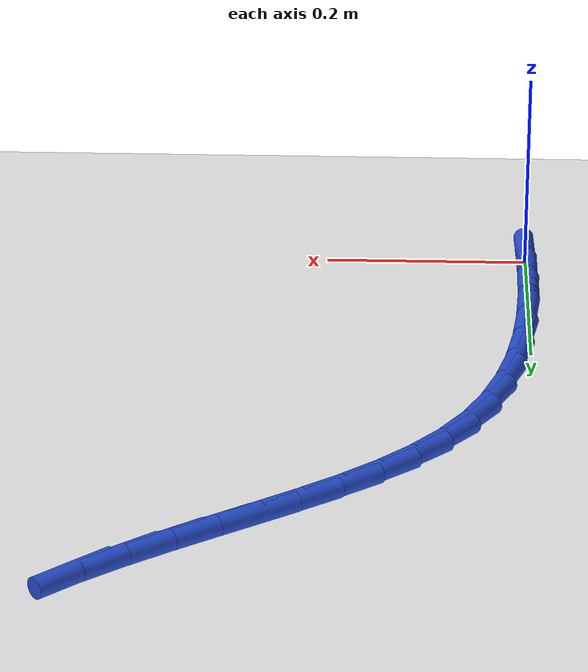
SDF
<sdf version="1.6">
 <world name="default">
  <model name="ground_plane">
   <static>1</static>
   <link name="link">
    <collision name="collision">
     <geometry><plane><normal>0 0 1</normal><size>100 100</size></plane></geometry>
     <surface><friction><ode><mu>100</mu><mu2>50</mu2></ode></friction></surface>
    </collision>
    <visual name="visual">
     <cast_shadows>0</cast_shadows>
     <geometry><plane><normal>0 0 1</normal><size>100 100</size></plane></geometry>
     <material>
      <script><uri>file://media/materials/scripts/gazebo.material</uri><name>Gazebo/WhiteGlow</name></script>
     </material>
    </visual>
   </link>
  </model>
  <model name="line">
   <link name="link_0">
    <pose>-3.903127820947816e-17 -1.3877787807814457e-17 0.01 0 1.57 -1.5505914478385485</pose>
    <collision name="collision">
     <geometry><cylinder><radius>0.01</radius><length>0.08</length></cylinder></geometry>
    </collision>
    <visual name="visual">
     <material>
      <script><name>Gazebo/Blue</name><uri>file://media/materials/scripts/gazebo.material</uri></script>
     </material>
     <geometry><cylinder><radius>0.01</radius><length>0.08</length></cylinder></geometry>
    </visual>
   </link>
   <link name="link_1">
    <pose>-0.000938762816465074 0.04645586192666425 0.01 0 1.57 1.5552604086132704</pose>
    <collision name="collision">
     <geometry><cylinder><radius>0.01</radius><length>0.08</length></cylinder></geometry>
    </collision>
    <visual name="visual">
     <material>
      <script><name>Gazebo/Blue</name><uri>file://media/materials/scripts/gazebo.material</uri></script>
     </material>
     <geometry><cylinder><radius>0.01</radius><length>0.08</length></cylinder></geometry>
    </visual>
   </link>
   <link name="link_2">
    <pose>-0.00021346502682845583 0.09313732783327625 0.01 0 1.57 1.5110777956562365</pose>
    <collision name="collision">
     <geometry><cylinder><radius>0.01</radius><length>0.08</length></cylinder></geometry>
    </collision>
    <visual name="visual">
     <material>
      <script><name>Gazebo/Blue</name><uri>file://media/materials/scripts/gazebo.material</uri></script>
     </material>
     <geometry><cylinder><radius>0.01</radius><length>0.08</length></cylinder></geometry>
    </visual>
   </link>
   <link name="link_3">
    <pose>0.0025612118360466107 0.13954465868091998 0.01 0 1.57 1.4571314653900533</pose>
    <collision name="collision">
     <geometry><cylinder><radius>0.01</radius><length>0.08</length></cylinder></geometry>
    </collision>
    <visual name="visual">
     <material>
      <script><name>Gazebo/Blue</name><uri>file://media/materials/scripts/gazebo.material</uri></script>
     </material>
     <geometry><cylinder><radius>0.01</radius><length>0.08</length></cylinder></geometry>
    </visual>
   </link>
   <link name="link_4">
    <pose>0.007770586239296926 0.18517811543067966 0.01 0 1.57 1.3917292936854357</pose>
    <collision name="collision">
     <geometry><cylinder><radius>0.01</radius><length>0.08</length></cylinder></geometry>
    </collision>
    <visual name="visual">
     <material>
      <script><name>Gazebo/Blue</name><uri>file://media/materials/scripts/gazebo.material</uri></script>
     </material>
     <geometry><cylinder><radius>0.01</radius><length>0.08</length></cylinder></geometry>
    </visual>
   </link>
   <link name="link_5">
    <pose>0.015799976650059284 0.2295379590436391 0.01 0 1.57 1.312863221745212</pose>
    <collision name="collision">
     <geometry><cylinder><radius>0.01</radius><length>0.08</length></cylinder></geometry>
    </collision>
    <visual name="visual">
     <material>
      <script><name>Gazebo/Blue</name><uri>file://media/materials/scripts/gazebo.material</uri></script>
     </material>
     <geometry><cylinder><radius>0.01</radius><length>0.08</length></cylinder></geometry>
    </visual>
   </link>
   <link name="link_6">
    <pose>0.02703470153547047 0.27212445048088246 0.01 0 1.57 1.2183941921724666</pose>
    <collision name="collision">
     <geometry><cylinder><radius>0.01</radius><length>0.08</length></cylinder></geometry>
    </collision>
    <visual name="visual">
     <material>
      <script><name>Gazebo/Blue</name><uri>file://media/materials/scripts/gazebo.material</uri></script>
     </material>
     <geometry><cylinder><radius>0.01</radius><length>0.08</length></cylinder></geometry>
    </visual>
   </link>
   <link name="link_7">
    <pose>0.04186007936266729 0.3124378507034939 0.01 0 1.57 1.1064869490803277</pose>
    <collision name="collision">
     <geometry><cylinder><radius>0.01</radius><length>0.08</length></cylinder></geometry>
    </collision>
    <visual name="visual">
     <material>
      <script><name>Gazebo/Blue</name><uri>file://media/materials/scripts/gazebo.material</uri></script>
     </material>
     <geometry><cylinder><radius>0.01</radius><length>0.08</length></cylinder></geometry>
    </visual>
   </link>
   <link name="link_8">
    <pose>0.06066142859878655 0.34997842067255724 0.01 0 1.57 0.9782676961249377</pose>
    <collision name="collision">
     <geometry><cylinder><radius>0.01</radius><length>0.08</length></cylinder></geometry>
    </collision>
    <visual name="visual">
     <material>
      <script><name>Gazebo/Blue</name><uri>file://media/materials/scripts/gazebo.material</uri></script>
     </material>
     <geometry><cylinder><radius>0.01</radius><length>0.08</length></cylinder></geometry>
    </visual>
   </link>
   <link name="link_9">
    <pose>0.08376991908536607 0.38430352987943195 0.01 0 1.57 0.8561584060810647</pose>
    <collision name="collision">
     <geometry><cylinder><radius>0.01</radius><length>0.08</length></cylinder></geometry>
    </collision>
    <visual name="visual">
     <material>
      <script><name>Gazebo/Blue</name><uri>file://media/materials/scripts/gazebo.material</uri></script>
     </material>
     <geometry><cylinder><radius>0.01</radius><length>0.08</length></cylinder></geometry>
    </visual>
   </link>
   <link name="link_10">
    <pose>0.11092179225668829 0.41559799655644813 0.01 0 1.57 0.7563378923026677</pose>
    <collision name="collision">
     <geometry><cylinder><radius>0.01</radius><length>0.08</length></cylinder></geometry>
    </collision>
    <visual name="visual">
     <material>
      <script><name>Gazebo/Blue</name><uri>file://media/materials/scripts/gazebo.material</uri></script>
     </material>
     <geometry><cylinder><radius>0.01</radius><length>0.08</length></cylinder></geometry>
    </visual>
   </link>
   <link name="link_11">
    <pose>0.14148525771230414 0.4444347883477361 0.01 0 1.57 0.6799791299687572</pose>
    <collision name="collision">
     <geometry><cylinder><radius>0.01</radius><length>0.08</length></cylinder></geometry>
    </collision>
    <visual name="visual">
     <material>
      <script><name>Gazebo/Blue</name><uri>file://media/materials/scripts/gazebo.material</uri></script>
     </material>
     <geometry><cylinder><radius>0.01</radius><length>0.08</length></cylinder></geometry>
    </visual>
   </link>
   <link name="link_12">
    <pose>0.17482306322868 0.4713926332779629 0.01 0 1.57 0.6261677456062255</pose>
    <collision name="collision">
     <geometry><cylinder><radius>0.01</radius><length>0.08</length></cylinder></geometry>
    </collision>
    <visual name="visual">
     <material>
      <script><name>Gazebo/Blue</name><uri>file://media/materials/scripts/gazebo.material</uri></script>
     </material>
     <geometry><cylinder><radius>0.01</radius><length>0.08</length></cylinder></geometry>
    </visual>
   </link>
   <link name="link_13">
    <pose>0.21029795658228215 0.49705025937179553 0.01 0 1.57 0.5933443862915642</pose>
    <collision name="collision">
     <geometry><cylinder><radius>0.01</radius><length>0.08</length></cylinder></geometry>
    </collision>
    <visual name="visual">
     <material>
      <script><name>Gazebo/Blue</name><uri>file://media/materials/scripts/gazebo.material</uri></script>
     </material>
     <geometry><cylinder><radius>0.01</radius><length>0.08</length></cylinder></geometry>
    </visual>
   </link>
   <link name="link_14">
    <pose>0.24727268554957677 0.5219863946539012 0.01 0 1.57 0.5800658131835379</pose>
    <collision name="collision">
     <geometry><cylinder><radius>0.01</radius><length>0.08</length></cylinder></geometry>
    </collision>
    <visual name="visual">
     <material>
      <script><name>Gazebo/Blue</name><uri>file://media/materials/scripts/gazebo.material</uri></script>
     </material>
     <geometry><cylinder><radius>0.01</radius><length>0.08</length></cylinder></geometry>
    </visual>
   </link>
   <link name="link_15">
    <pose>0.2851099979070302 0.5467797671489468 0.01 0 1.57 0.5853467770314257</pose>
    <collision name="collision">
     <geometry><cylinder><radius>0.01</radius><length>0.08</length></cylinder></geometry>
    </collision>
    <visual name="visual">
     <material>
      <script><name>Gazebo/Blue</name><uri>file://media/materials/scripts/gazebo.material</uri></script>
     </material>
     <geometry><cylinder><radius>0.01</radius><length>0.08</length></cylinder></geometry>
    </visual>
   </link>
   <link name="link_16">
    <pose>0.32317264143110885 0.5720091048815996 0.01 0 1.57 0.6087361123308997</pose>
    <collision name="collision">
     <geometry><cylinder><radius>0.01</radius><length>0.08</length></cylinder></geometry>
    </collision>
    <visual name="visual">
     <material>
      <script><name>Gazebo/Blue</name><uri>file://media/materials/scripts/gazebo.material</uri></script>
     </material>
     <geometry><cylinder><radius>0.01</radius><length>0.08</length></cylinder></geometry>
    </visual>
   </link>
   <link name="link_17">
    <pose>0.3608233638982789 0.5982531358765265 0.01 0 1.57 0.6502214812099095</pose>
    <collision name="collision">
     <geometry><cylinder><radius>0.01</radius><length>0.08</length></cylinder></geometry>
    </collision>
    <visual name="visual">
     <material>
      <script><name>Gazebo/Blue</name><uri>file://media/materials/scripts/gazebo.material</uri></script>
     </material>
     <geometry><cylinder><radius>0.01</radius><length>0.08</length></cylinder></geometry>
    </visual>
   </link>
   <link name="link_18">
    <pose>0.3974249130850066 0.6260905881583947 0.01 0 1.57 0.7099843835716187</pose>
    <collision name="collision">
     <geometry><cylinder><radius>0.01</radius><length>0.08</length></cylinder></geometry>
    </collision>
    <visual name="visual">
     <material>
      <script><name>Gazebo/Blue</name><uri>file://media/materials/scripts/gazebo.material</uri></script>
     </material>
     <geometry><cylinder><radius>0.01</radius><length>0.08</length></cylinder></geometry>
    </visual>
   </link>
   <link name="link_170">
    <pose>-4.7271214720367993e-17 1.1102230246251565e-16 0.01 0 1.57 -1.5488905783589908</pose>
    <collision name="collision">
     <geometry><cylinder><radius>0.01</radius><length>0.08</length></cylinder></geometry>
    </collision>
    <visual name="visual">
     <material>
      <script><name>Gazebo/Blue</name><uri>file://media/materials/scripts/gazebo.material</uri></script>
     </material>
     <geometry><cylinder><radius>0.01</radius><length>0.08</length></cylinder></geometry>
    </visual>
   </link>
   <link name="link_171">
    <pose>-0.0010197238386417534 0.04654306733973448 0.01 0 1.57 -1.5488905783589908</pose>
    <collision name="collision">
     <geometry><cylinder><radius>0.01</radius><length>0.08</length></cylinder></geometry>
    </collision>
    <visual name="visual">
     <material>
      <script><name>Gazebo/Blue</name><uri>file://media/materials/scripts/gazebo.material</uri></script>
     </material>
     <geometry><cylinder><radius>0.01</radius><length>0.08</length></cylinder></geometry>
    </visual>
   </link>
  </model>
 </world>
</sdf>
